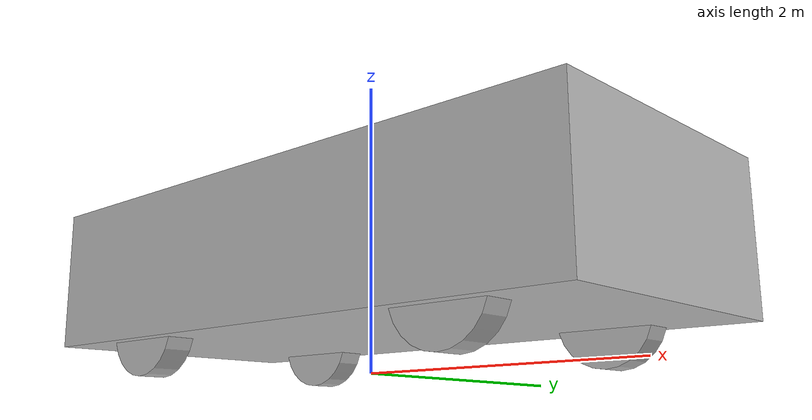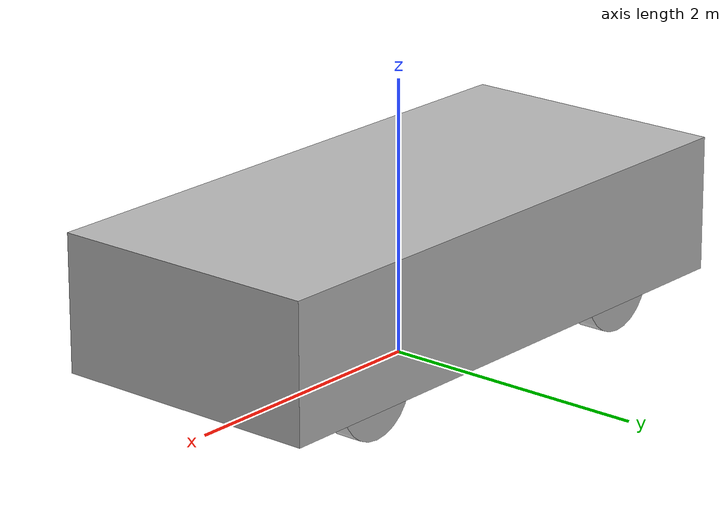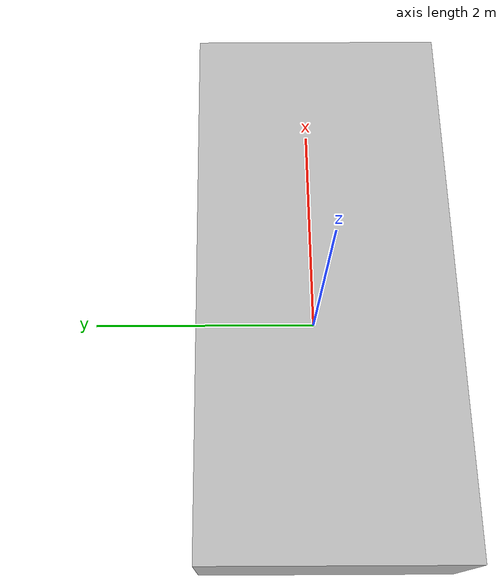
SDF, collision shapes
<?xml version="1.0"?>
<sdf version="1.6">
    <model name="audi_r8">
        <enable_wind>1</enable_wind>
        <static>0</static>

        <link name="base_link">
            <inertial>
                <pose>0 0 0.6 0 0 0</pose>
                <mass>1600</mass>
                <inertia>
                    <ixx>739</ixx>
                    <ixy>0</ixy>
                    <ixz>0</ixz>
                    <iyy>2786</iyy>
                    <iyz>0</iyz>
                    <izz>3114</izz>
                </inertia>
            </inertial>

            <!-- Box starts 0.25 m above ground so only the wheels contact
                 the ground plane. -->
            <collision name="base_link_collision">
                <pose>0 0 0.75 0 0 0</pose>
                <geometry>
                    <box>
                        <size>4.41 2.04 1.0</size>
                    </box>
                </geometry>
                <surface>
                    <friction>
                        <ode>
                            <mu>0.8</mu>
                            <mu2>0.8</mu2>
                        </ode>
                    </friction>
                </surface>
            </collision>

            <visual name="base_link_visual">
                <pose>0 0 0 0 0 3.14159265358979</pose>
                <geometry>
                    <mesh>
                        <uri>model://audi_r8/meshes/audi_r8.dae</uri>
                    </mesh>
                </geometry>
            </visual>

            <visual name="aruco_marker_visual">
                <pose>-0.1 0 1.245 0 0 -1.5707963267948966</pose>
                <geometry>
                    <mesh>
                        <uri>model://audi_r8/meshes/april_tag.dae</uri>
                        <scale>6 6 1</scale>
                    </mesh>
                </geometry>
                <cast_shadows>false</cast_shadows>
            </visual>
        </link>
        <!-- Steering knuckle: base_link -> (steer about z) -> knuckle -> (spin about y) -> wheel -->
        <link name="front_left_steering">
            <pose>1.325 0.82 0.335 0 0 0</pose>
            <inertial>
                <mass>2</mass>
                <inertia>
                    <ixx>0.01</ixx>
                    <ixy>0</ixy>
                    <ixz>0</ixz>
                    <iyy>0.01</iyy>
                    <iyz>0</iyz>
                    <izz>0.01</izz>
                </inertia>
            </inertial>
        </link>
        <joint name="front_left_steering_joint" type="revolute">
            <parent>base_link</parent>
            <child>front_left_steering</child>
            <axis>
                <xyz>0 0 1</xyz>
                <limit>
                    <lower>-0.6</lower>
                    <upper>0.6</upper>
                    <!-- Effort limit so velocity control respects the angle
                         limits; velocity = max steering rate (rad/s). -->
                    <effort>1000000</effort>
                    <velocity>1.0</velocity>
                </limit>
            </axis>
        </joint>
        <link name="front_left_wheel">
            <pose>1.325 0.82 0.335 0 0 0</pose>
            <inertial>
                <mass>18</mass>
                <inertia>
                    <ixx>0.6</ixx>
                    <ixy>0</ixy>
                    <ixz>0</ixz>
                    <iyy>0.6</iyy>
                    <iyz>0</iyz>
                    <izz>1.01</izz>
                </inertia>
            </inertial>
            <collision name="collision">
                <pose>0 0 0 -1.5707963267948966 0 0</pose>
                <geometry>
                    <cylinder>
                        <length>0.2</length>
                        <radius>0.335</radius>
                    </cylinder>
                </geometry>
                <surface>
                    <friction>
                        <ode>
                            <mu>0.5</mu>
                            <mu2>1</mu2>
                            <slip1>0.00062</slip1>
                            <slip2>0</slip2>
                            <fdir1>0 0 1</fdir1>
                        </ode>
                    </friction>
                </surface>
            </collision>
        </link>
        <joint name="front_left_wheel_joint" type="revolute">
            <parent>front_left_steering</parent>
            <child>front_left_wheel</child>
            <axis>
                <xyz>0 1 0</xyz>
                <limit>
                    <lower>-1.79769e+308</lower>
                    <upper>+1.79769e+308</upper>
                </limit>
            </axis>
        </joint>

        <!-- Steering knuckle: base_link -> (steer about z) -> knuckle -> (spin about y) -> wheel -->
        <link name="front_right_steering">
            <pose>1.325 -0.82 0.335 0 0 0</pose>
            <inertial>
                <mass>2</mass>
                <inertia>
                    <ixx>0.01</ixx>
                    <ixy>0</ixy>
                    <ixz>0</ixz>
                    <iyy>0.01</iyy>
                    <iyz>0</iyz>
                    <izz>0.01</izz>
                </inertia>
            </inertial>
        </link>
        <joint name="front_right_steering_joint" type="revolute">
            <parent>base_link</parent>
            <child>front_right_steering</child>
            <axis>
                <xyz>0 0 1</xyz>
                <limit>
                    <lower>-0.6</lower>
                    <upper>0.6</upper>
                    <!-- Effort limit so velocity control respects the angle
                         limits; velocity = max steering rate (rad/s). -->
                    <effort>1000000</effort>
                    <velocity>1.0</velocity>
                </limit>
            </axis>
        </joint>
        <link name="front_right_wheel">
            <pose>1.325 -0.82 0.335 0 0 0</pose>
            <inertial>
                <mass>18</mass>
                <inertia>
                    <ixx>0.6</ixx>
                    <ixy>0</ixy>
                    <ixz>0</ixz>
                    <iyy>0.6</iyy>
                    <iyz>0</iyz>
                    <izz>1.01</izz>
                </inertia>
            </inertial>
            <collision name="collision">
                <pose>0 0 0 -1.5707963267948966 0 0</pose>
                <geometry>
                    <cylinder>
                        <length>0.2</length>
                        <radius>0.335</radius>
                    </cylinder>
                </geometry>
                <surface>
                    <friction>
                        <ode>
                            <mu>0.5</mu>
                            <mu2>1</mu2>
                            <slip1>0.00062</slip1>
                            <slip2>0</slip2>
                            <fdir1>0 0 1</fdir1>
                        </ode>
                    </friction>
                </surface>
            </collision>
        </link>
        <joint name="front_right_wheel_joint" type="revolute">
            <parent>front_right_steering</parent>
            <child>front_right_wheel</child>
            <axis>
                <xyz>0 1 0</xyz>
                <limit>
                    <lower>-1.79769e+308</lower>
                    <upper>+1.79769e+308</upper>
                </limit>
            </axis>
        </joint>

        <link name="rear_left_wheel">
            <pose>-1.325 0.82 0.335 0 0 0</pose>
            <inertial>
                <mass>18</mass>
                <inertia>
                    <ixx>0.6</ixx>
                    <ixy>0</ixy>
                    <ixz>0</ixz>
                    <iyy>0.6</iyy>
                    <iyz>0</iyz>
                    <izz>1.01</izz>
                </inertia>
            </inertial>
            <collision name="collision">
                <pose>0 0 0 -1.5707963267948966 0 0</pose>
                <geometry>
                    <cylinder>
                        <length>0.2</length>
                        <radius>0.335</radius>
                    </cylinder>
                </geometry>
                <surface>
                    <friction>
                        <ode>
                            <mu>0.5</mu>
                            <mu2>1</mu2>
                            <slip1>0.00062</slip1>
                            <slip2>0</slip2>
                            <fdir1>0 0 1</fdir1>
                        </ode>
                    </friction>
                </surface>
            </collision>
        </link>
        <joint name="rear_left_wheel_joint" type="revolute">
            <parent>base_link</parent>
            <child>rear_left_wheel</child>
            <axis>
                <xyz>0 1 0</xyz>
                <limit>
                    <lower>-1.79769e+308</lower>
                    <upper>+1.79769e+308</upper>
                </limit>
            </axis>
        </joint>

        <link name="rear_right_wheel">
            <pose>-1.325 -0.82 0.335 0 0 0</pose>
            <inertial>
                <mass>18</mass>
                <inertia>
                    <ixx>0.6</ixx>
                    <ixy>0</ixy>
                    <ixz>0</ixz>
                    <iyy>0.6</iyy>
                    <iyz>0</iyz>
                    <izz>1.01</izz>
                </inertia>
            </inertial>
            <collision name="collision">
                <pose>0 0 0 -1.5707963267948966 0 0</pose>
                <geometry>
                    <cylinder>
                        <length>0.2</length>
                        <radius>0.335</radius>
                    </cylinder>
                </geometry>
                <surface>
                    <friction>
                        <ode>
                            <mu>0.5</mu>
                            <mu2>1</mu2>
                            <slip1>0.00062</slip1>
                            <slip2>0</slip2>
                            <fdir1>0 0 1</fdir1>
                        </ode>
                    </friction>
                </surface>
            </collision>
        </link>
        <joint name="rear_right_wheel_joint" type="revolute">
            <parent>base_link</parent>
            <child>rear_right_wheel</child>
            <axis>
                <xyz>0 1 0</xyz>
                <limit>
                    <lower>-1.79769e+308</lower>
                    <upper>+1.79769e+308</upper>
                </limit>
            </axis>
        </joint>

        <plugin
            filename="gz-sim-ackermann-steering-system"
            name="gz::sim::systems::AckermannSteering">
            <left_joint>rear_left_wheel_joint</left_joint>
            <right_joint>rear_right_wheel_joint</right_joint>
            <left_steering_joint>front_left_steering_joint</left_steering_joint>
            <right_steering_joint>front_right_steering_joint</right_steering_joint>
            <kingpin_width>1.44</kingpin_width>
            <steering_limit>0.5</steering_limit>
            <wheel_base>2.65</wheel_base>
            <wheel_separation>1.64</wheel_separation>
            <wheel_radius>0.335</wheel_radius>
            <min_velocity>-8</min_velocity>
            <max_velocity>30</max_velocity>
            <min_acceleration>-6</min_acceleration>
            <max_acceleration>3</max_acceleration>
            <min_jerk>-15</min_jerk>
            <max_jerk>15</max_jerk>
            <odom_publish_frequency>20</odom_publish_frequency>
            <odom_topic>/audi_r8/wheel_odometry</odom_topic>
            <topic>cmd_vel</topic>
        </plugin>
        <plugin
            name="gz::sim::systems::OdometryPublisher"
            filename="gz-sim-odometry-publisher-system">
            <odom_frame>world</odom_frame>
            <robot_base_frame>audi_r8/base_link</robot_base_frame>
            <odom_publish_frequency>20</odom_publish_frequency>
            <dimensions>3</dimensions>
        </plugin>
    </model>
</sdf>
